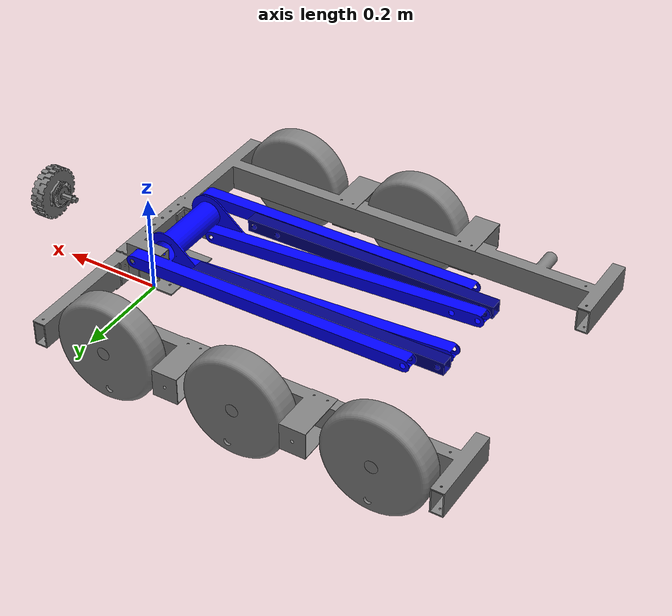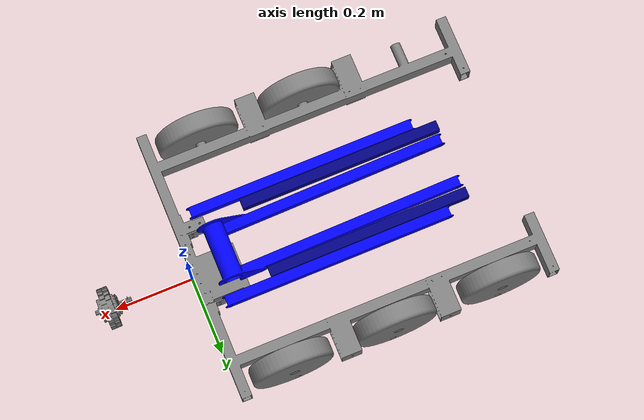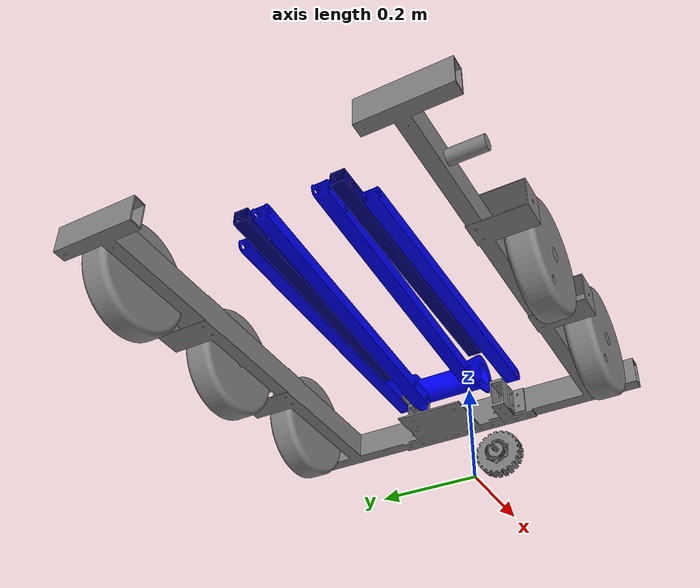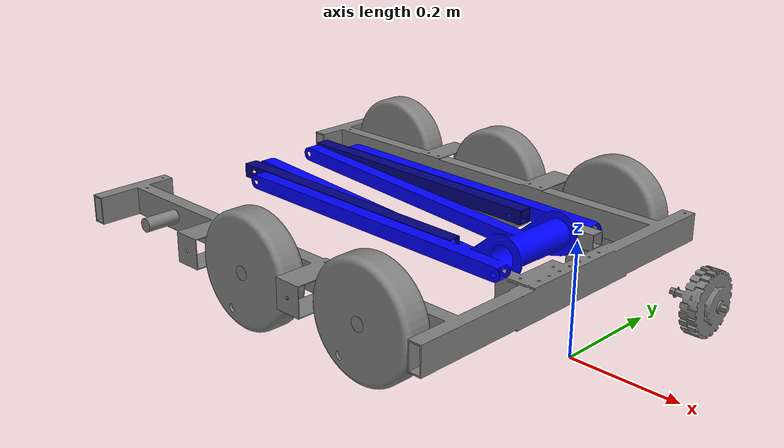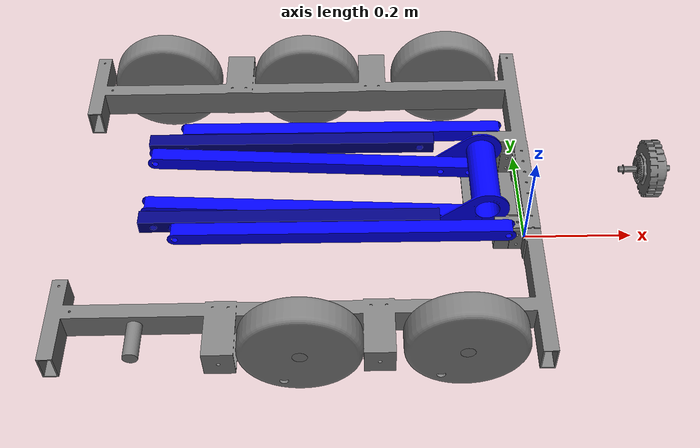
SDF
<?xml version="1.0" encoding="utf-8"?>
<sdf version="1.5">
  <model name="SimBot2019-2">
    <pose>0 0 0.12446 0 0 0</pose>
    <plugin name="clock" filename="libgz_clock.so">
      <topic>/gazebo/frc/time</topic>
    </plugin>
    <link name="Frame">
      <gravity>1</gravity>
      <self_collide>0</self_collide>
      <pose>-0.321553535676864 0.00175347404046746 -0.000511003682687343 -1.5707963267949 0 1.5707963267949</pose>
      <must_be_base_link>1</must_be_base_link>
      <velocity_decay>
        <linear>0</linear>
        <angular>0</angular>
      </velocity_decay>
      <inertial>
        <mass>3.62245562967997</mass>
        <pose>0 0 0 0 0 0</pose>
        <inertia>
          <ixx>0.2095541251639</ixx>
          <ixy>2.5056971384159E-05</ixy>
          <ixz>0.00167712046646788</ixz>
          <iyy>0.392915780451513</iyy>
          <iyz>0.000439438632626004</iyz>
          <izz>0.183814402513456</izz>
        </inertia>
      </inertial>
      <collision name="Frame_collision">
        <pose>-0.00175347404046739 -0.000511003682687411 0.0848464737230545 0 0 0</pose>
        <geometry>
          <mesh>
            <scale>1 1 1</scale>
            <uri>model://SimBot2019-2/meshes/Frame_col.STL</uri>
          </mesh>
        </geometry>
        <surface>
          <contact>
            <ode />
          </contact>
          <friction>
            <ode>
              <mu>1</mu>
              <mu2>1</mu2>
            </ode>
          </friction>
        </surface>
      </collision>
      <visual name="Frame_visual">
        <pose>-0.00175347404046739 -0.000511003682687411 0.0848464737230545 0 0 0</pose>
        <material>
          <ambient>0.501960784313725 0.501960784313725 0.501960784313725 1</ambient>
          <diffuse>0.501960784313725 0.501960784313725 0.501960784313725 1</diffuse>
        </material>
        <geometry>
          <mesh>
            <scale>1 1 1</scale>
            <uri>model://SimBot2019-2/meshes/Frame.STL</uri>
          </mesh>
        </geometry>
      </visual>
    </link>
    <link name="LFWheel">
      <gravity>1</gravity>
      <self_collide>0</self_collide>
      <pose>-0.673098436426671 0.303262709940693 0.00169521560483079 -1.5707963267949 0 1.5707963267949</pose>
      <must_be_base_link>0</must_be_base_link>
      <velocity_decay>
        <linear>0</linear>
        <angular>0</angular>
      </velocity_decay>
      <inertial>
        <mass>0.255325203825891</mass>
        <pose>0 0 0 0 0 0</pose>
        <inertia>
          <ixx>0</ixx>
          <ixy>0</ixy>
          <ixz>0</ixz>
          <iyy>0</iyy>
          <iyz>0</iyz>
          <izz>0</izz>
        </inertia>
      </inertial>
      <collision name="LFWheel_collision">
        <pose>-0.303262709940693 0.00169521560483064 -0.266698427026753 0 0 0</pose>
        <geometry>
          <mesh>
            <scale>1 1 1</scale>
            <uri>model://SimBot2019-2/meshes/LFWheel_col.STL</uri>
          </mesh>
        </geometry>
        <surface>
          <contact>
            <ode />
          </contact>
          <friction>
            <ode>
              <mu>1</mu>
              <mu2>1</mu2>
            </ode>
          </friction>
        </surface>
      </collision>
      <visual name="LFWheel_visual">
        <pose>-0.303262709940693 0.00169521560483064 -0.266698427026753 0 0 0</pose>
        <material>
          <ambient>0.501960784313725 0.501960784313725 0.501960784313725 1</ambient>
          <diffuse>0.501960784313725 0.501960784313725 0.501960784313725 1</diffuse>
        </material>
        <geometry>
          <mesh>
            <scale>1 1 1</scale>
            <uri>model://SimBot2019-2/meshes/LFWheel.STL</uri>
          </mesh>
        </geometry>
      </visual>
    </link>
    <joint name="Frame-LFWheel" type="revolute">
      <parent>Frame</parent>
      <child>LFWheel</child>
      <pose>-5.55111512312578E-17 4.42156048337892E-05 -2.76542456689732E-06 0 0 3.14159265358979</pose>
      <axis>
        <xyz>-1 -1.22460635382238E-16 0</xyz>
        <dynamics>
          <damping>1</damping>
          <friction>1</friction>
        </dynamics>
        <limit>
          <effort>50</effort>
        </limit>
      </axis>
    </joint>
    <link name="LCWheel">
      <gravity>1</gravity>
      <self_collide>0</self_collide>
      <pose>-0.405312671639957 0.303262709940693 -0.00385752270000407 -1.5707963267949 0 1.5707963267949</pose>
      <must_be_base_link>0</must_be_base_link>
      <velocity_decay>
        <linear>0</linear>
        <angular>0</angular>
      </velocity_decay>
      <inertial>
        <mass>0.255325203825891</mass>
        <pose>0 0 0 0 0 0</pose>
        <inertia>
          <ixx>0</ixx>
          <ixy>0</ixy>
          <ixz>0</ixz>
          <iyy>0</iyy>
          <iyz>0</iyz>
          <izz>0</izz>
        </inertia>
      </inertial>
      <collision name="LCWheel_collision">
        <pose>-0.303262709940693 -0.00385752270000416 0.0010873377599609 0 0 0</pose>
        <geometry>
          <mesh>
            <scale>1 1 1</scale>
            <uri>model://SimBot2019-2/meshes/LCWheel_col.STL</uri>
          </mesh>
        </geometry>
        <surface>
          <contact>
            <ode />
          </contact>
          <friction>
            <ode>
              <mu>1</mu>
              <mu2>1</mu2>
            </ode>
          </friction>
        </surface>
      </collision>
      <visual name="LCWheel_visual">
        <pose>-0.303262709940693 -0.00385752270000416 0.0010873377599609 0 0 0</pose>
        <material>
          <ambient>0.501960784313725 0.501960784313725 0.501960784313725 1</ambient>
          <diffuse>0.501960784313725 0.501960784313725 0.501960784313725 1</diffuse>
        </material>
        <geometry>
          <mesh>
            <scale>1 1 1</scale>
            <uri>model://SimBot2019-2/meshes/LCWheel.STL</uri>
          </mesh>
        </geometry>
      </visual>
    </link>
    <joint name="Frame-LCWheel" type="revolute">
      <parent>Frame</parent>
      <child>LCWheel</child>
      <pose>-5.55111512312578E-17 -0.000132954805310722 0.00113500257289437 0 0 0</pose>
      <axis>
        <xyz>1 0 0</xyz>
        <dynamics>
          <damping>1</damping>
          <friction>1</friction>
        </dynamics>
        <limit>
          <effort>50</effort>
        </limit>
      </axis>
    </joint>
    <link name="LBWheel">
      <gravity>1</gravity>
      <self_collide>0</self_collide>
      <pose>-0.139700620681278 0.303199220635696 0.00169514092477994 -1.5707963267949 0 1.5707963267949</pose>
      <must_be_base_link>0</must_be_base_link>
      <velocity_decay>
        <linear>0</linear>
        <angular>0</angular>
      </velocity_decay>
      <inertial>
        <mass>0.255325203825891</mass>
        <pose>0 0 0 0 0 0</pose>
        <inertia>
          <ixx>0</ixx>
          <ixy>0</ixy>
          <ixz>0</ixz>
          <iyy>0</iyy>
          <iyz>0</iyz>
          <izz>0</izz>
        </inertia>
      </inertial>
      <collision name="LBWheel_collision">
        <pose>-0.303199220635695 0.00169514092477991 0.26669938871864 0 0 0</pose>
        <geometry>
          <mesh>
            <scale>1 1 1</scale>
            <uri>model://SimBot2019-2/meshes/LBWheel_col.STL</uri>
          </mesh>
        </geometry>
        <surface>
          <contact>
            <ode />
          </contact>
          <friction>
            <ode>
              <mu>1</mu>
              <mu2>1</mu2>
            </ode>
          </friction>
        </surface>
      </collision>
      <visual name="LBWheel_visual">
        <pose>-0.303199220635695 0.00169514092477991 0.26669938871864 0 0 0</pose>
        <material>
          <ambient>0.501960784313725 0.501960784313725 0.501960784313725 1</ambient>
          <diffuse>0.501960784313725 0.501960784313725 0.501960784313725 1</diffuse>
        </material>
        <geometry>
          <mesh>
            <scale>1 1 1</scale>
            <uri>model://SimBot2019-2/meshes/LBWheel.STL</uri>
          </mesh>
        </geometry>
      </visual>
    </link>
    <joint name="Frame-LBWheel" type="revolute">
      <parent>Frame</parent>
      <child>LBWheel</child>
      <pose>-1.11022302462516E-16 4.41409247766737E-05 3.74376878553573E-06 0 0 0</pose>
      <axis>
        <xyz>1 0 0</xyz>
        <dynamics>
          <damping>1</damping>
          <friction>1</friction>
        </dynamics>
        <limit>
          <effort>50</effort>
        </limit>
      </axis>
    </joint>
    <link name="RFWheel">
      <gravity>1</gravity>
      <self_collide>0</self_collide>
      <pose>-0.673096893872116 -0.303262709940692 0.00169528357489551 -1.5707963267949 0 1.5707963267949</pose>
      <must_be_base_link>0</must_be_base_link>
      <velocity_decay>
        <linear>0</linear>
        <angular>0</angular>
      </velocity_decay>
      <inertial>
        <mass>0.255325203825891</mass>
        <pose>0 0 0 0 0 0</pose>
        <inertia>
          <ixx>0</ixx>
          <ixy>0</ixy>
          <ixz>0</ixz>
          <iyy>0</iyy>
          <iyz>0</iyz>
          <izz>0</izz>
        </inertia>
      </inertial>
      <collision name="RFWheel_collision">
        <pose>0.303262709940693 0.00169528357489536 -0.266696884472198 0 0 0</pose>
        <geometry>
          <mesh>
            <scale>1 1 1</scale>
            <uri>model://SimBot2019-2/meshes/RFWheel_col.STL</uri>
          </mesh>
        </geometry>
        <surface>
          <contact>
            <ode />
          </contact>
          <friction>
            <ode>
              <mu>1</mu>
              <mu2>1</mu2>
            </ode>
          </friction>
        </surface>
      </collision>
      <visual name="RFWheel_visual">
        <pose>0.303262709940693 0.00169528357489536 -0.266696884472198 0 0 0</pose>
        <material>
          <ambient>0.501960784313725 0.501960784313725 0.501960784313725 1</ambient>
          <diffuse>0.501960784313725 0.501960784313725 0.501960784313725 1</diffuse>
        </material>
        <geometry>
          <mesh>
            <scale>1 1 1</scale>
            <uri>model://SimBot2019-2/meshes/RFWheel.STL</uri>
          </mesh>
        </geometry>
      </visual>
    </link>
    <joint name="Frame-RFWheel" type="revolute">
      <parent>Frame</parent>
      <child>RFWheel</child>
      <pose>5.55111512312578E-17 4.42835748872173E-05 -1.20323087010599E-06 0 0 0</pose>
      <axis>
        <xyz>1 0 0</xyz>
        <dynamics>
          <damping>1</damping>
          <friction>1</friction>
        </dynamics>
        <limit>
          <effort>50</effort>
        </limit>
      </axis>
    </joint>
    <link name="RCWheel">
      <gravity>1</gravity>
      <self_collide>0</self_collide>
      <pose>-0.406431076654579 -0.303368868926879 -0.0036834982409925 -1.5707963267949 0 1.5707963267949</pose>
      <must_be_base_link>0</must_be_base_link>
      <velocity_decay>
        <linear>0</linear>
        <angular>0</angular>
      </velocity_decay>
      <inertial>
        <mass>0.255325203825891</mass>
        <pose>0 0 0 0 0 0</pose>
        <inertia>
          <ixx>0</ixx>
          <ixy>0</ixy>
          <ixz>0</ixz>
          <iyy>0</iyy>
          <iyz>0</iyz>
          <izz>0</izz>
        </inertia>
      </inertial>
      <collision name="RCWheel_collision">
        <pose>0.30336886892688 -0.00368349824099259 -3.10672546609658E-05 0 0 0</pose>
        <geometry>
          <mesh>
            <scale>1 1 1</scale>
            <uri>model://SimBot2019-2/meshes/RCWheel_col.STL</uri>
          </mesh>
        </geometry>
        <surface>
          <contact>
            <ode />
          </contact>
          <friction>
            <ode>
              <mu>1</mu>
              <mu2>1</mu2>
            </ode>
          </friction>
        </surface>
      </collision>
      <visual name="RCWheel_visual">
        <pose>0.30336886892688 -0.00368349824099259 -3.10672546609658E-05 0 0 0</pose>
        <material>
          <ambient>0.501960784313725 0.501960784313725 0.501960784313725 1</ambient>
          <diffuse>0.501960784313725 0.501960784313725 0.501960784313725 1</diffuse>
        </material>
        <geometry>
          <mesh>
            <scale>1 1 1</scale>
            <uri>model://SimBot2019-2/meshes/RCWheel.STL</uri>
          </mesh>
        </geometry>
      </visual>
    </link>
    <joint name="Frame-RCWheel" type="revolute">
      <parent>Frame</parent>
      <child>RCWheel</child>
      <pose>1.11022302462516E-16 0.000217839348982876 -0.00112495375183556 0 0 0</pose>
      <axis>
        <xyz>1 0 0</xyz>
        <dynamics>
          <damping>1</damping>
          <friction>1</friction>
        </dynamics>
        <limit>
          <effort>50</effort>
        </limit>
      </axis>
    </joint>
    <link name="RBWheel">
      <gravity>1</gravity>
      <self_collide>0</self_collide>
      <pose>-0.139681443305567 -0.303262709940693 0.0016889037946457 -1.5707963267949 0 1.5707963267949</pose>
      <must_be_base_link>0</must_be_base_link>
      <velocity_decay>
        <linear>0</linear>
        <angular>0</angular>
      </velocity_decay>
      <inertial>
        <mass>0.255325203825891</mass>
        <pose>0 0 0 0 0 0</pose>
        <inertia>
          <ixx>0</ixx>
          <ixy>0</ixy>
          <ixz>0</ixz>
          <iyy>0</iyy>
          <iyz>0</iyz>
          <izz>0</izz>
        </inertia>
      </inertial>
      <collision name="RBWheel_collision">
        <pose>0.303262709940693 0.00168890379464568 0.266718566094351 0 0 0</pose>
        <geometry>
          <mesh>
            <scale>1 1 1</scale>
            <uri>model://SimBot2019-2/meshes/RBWheel_col.STL</uri>
          </mesh>
        </geometry>
        <surface>
          <contact>
            <ode />
          </contact>
          <friction>
            <ode>
              <mu>0</mu>
              <mu2>0</mu2>
            </ode>
          </friction>
        </surface>
      </collision>
      <visual name="RBWheel_visual">
        <pose>0.303262709940693 0.00168890379464568 0.266718566094351 0 0 0</pose>
        <material>
          <ambient>0.501960784313725 0.501960784313725 0.501960784313725 1</ambient>
          <diffuse>0.501960784313725 0.501960784313725 0.501960784313725 1</diffuse>
        </material>
        <geometry>
          <mesh>
            <scale>1 1 1</scale>
            <uri>model://SimBot2019-2/meshes/RBWheel.STL</uri>
          </mesh>
        </geometry>
      </visual>
    </link>
    <joint name="Frame-RBWheel" type="revolute">
      <parent>Frame</parent>
      <child>RBWheel</child>
      <pose>5.55111512312578E-17 3.7903794642441E-05 2.29211444965349E-05 0 0 0</pose>
      <axis>
        <xyz>1 0 0</xyz>
        <dynamics>
          <damping>1</damping>
          <friction>1</friction>
        </dynamics>
        <limit>
          <effort>50</effort>
        </limit>
      </axis>
    </joint>
    <link name="Climber1">
      <gravity>1</gravity>
      <self_collide>0</self_collide>
      <pose>-0.323733307948634 0.00178585381407782 0.0353743678217534 -1.5707963267949 0 1.5707963267949</pose>
      <must_be_base_link>0</must_be_base_link>
      <velocity_decay>
        <linear>0</linear>
        <angular>0</angular>
      </velocity_decay>
      <inertial>
        <mass>1.09137603293812</mass>
        <pose>0 0 0 0 0 0</pose>
        <inertia>
          <ixx>0.0103078548798271</ixx>
          <ixy>1.34382460025718E-06</ixy>
          <ixz>2.10777898500688E-05</ixz>
          <iyy>0.0183089226570834</iyy>
          <iyz>0.000240141860446858</iyz>
          <izz>0.00812380263892143</izz>
        </inertia>
      </inertial>
      <collision name="Climber1_collision">
        <pose>-0.00178585381407775 0.0353743678217533 0.0826667014512842 0 0 0</pose>
        <geometry>
          <mesh>
            <scale>1 1 1</scale>
            <uri>model://SimBot2019-2/meshes/Climber1_col.STL</uri>
          </mesh>
        </geometry>
        <surface>
          <contact>
            <ode />
          </contact>
          <friction>
            <ode>
              <mu>0</mu>
              <mu2>0</mu2>
            </ode>
          </friction>
        </surface>
      </collision>
      <visual name="Climber1_visual">
        <pose>-0.00178585381407775 0.0353743678217533 0.0826667014512842 0 0 0</pose>
        <material>
          <ambient>0 0 1 1</ambient>
          <diffuse>0 0 1 1</diffuse>
        </material>
        <geometry>
          <mesh>
            <scale>1 1 1</scale>
            <uri>model://SimBot2019-2/meshes/Climber1.STL</uri>
          </mesh>
        </geometry>
      </visual>
    </link>
    <joint name="Frame-Climber1" type="revolute">
      <parent>Frame</parent>
      <child>Climber1</child>
      <pose>1.66967134562768E-16 -0.00590065564055302 -0.234832924196666 0 0 0</pose>
      <axis>
        <xyz>1 0 0</xyz>
        <dynamics>
          <damping>1</damping>
          <friction>1</friction>
        </dynamics>
        <limit>
          <upper>0</upper>
          <lower>0</lower>
          <effort>100</effort>
        </limit>
      </axis>
    </joint>
    <link name="Climber2">
      <gravity>1</gravity>
      <self_collide>0</self_collide>
      <pose>-0.42638491633238 0.00178585321055879 0.0435126444989845 -1.5707963267949 0 1.5707963267949</pose>
      <must_be_base_link>0</must_be_base_link>
      <velocity_decay>
        <linear>0</linear>
        <angular>0</angular>
      </velocity_decay>
      <inertial>
        <mass>0.409299999077662</mass>
        <pose>0 0 0 0 0 0</pose>
        <inertia>
          <ixx>1.19895149546238E-07</ixx>
          <ixy>1.30570888906081E-07</ixy>
          <ixz>1.96930921731175E-05</ixz>
          <iyy>0.00323490402888518</iyy>
          <iyz>7.94904525265603E-10</iyz>
          <izz>0.00323478414427652</izz>
        </inertia>
      </inertial>
      <collision name="Climber2_collision">
        <pose>-0.00178585321055869 0.0435126444989844 -0.0199849069324619 0 0 0</pose>
        <geometry>
          <mesh>
            <scale>1 1 1</scale>
            <uri>model://SimBot2019-2/meshes/Climber2_col.STL</uri>
          </mesh>
        </geometry>
        <surface>
          <contact>
            <ode />
          </contact>
          <friction>
            <ode>
              <mu>1</mu>
              <mu2>1</mu2>
            </ode>
          </friction>
        </surface>
      </collision>
      <visual name="Climber2_visual">
        <pose>-0.00178585321055869 0.0435126444989844 -0.0199849069324619 0 0 0</pose>
        <material>
          <ambient>0 0 0.501960784313725 1</ambient>
          <diffuse>0 0 0.501960784313725 1</diffuse>
        </material>
        <geometry>
          <mesh>
            <scale>1 1 1</scale>
            <uri>model://SimBot2019-2/meshes/Climber2.STL</uri>
          </mesh>
        </geometry>
      </visual>
    </link>
    <joint name="Climber1-Climber2" type="revolute">
      <parent>Climber1</parent>
      <child>Climber2</child>
      <pose>9.82287168271867E-17 -0.00158127981010294 0.24129407342068 0 0 3.14159265358979</pose>
      <axis>
        <xyz>-1 -1.22460635382238E-16 0</xyz>
        <dynamics>
          <damping>0</damping>
          <friction>0</friction>
        </dynamics>
        <limit>
          <upper>0</upper>
          <lower>0</lower>
          <effort>100</effort>
        </limit>
      </axis>
    </joint>
    <plugin name="Frame-LFWheel_motor" filename="libgz_dc_motor.so">
      <joint>Frame-LFWheel</joint>
      <topic>/gazebo/frc/simulator/pwm/1</topic>
      <multiplier>10</multiplier>
    </plugin>
    <plugin name="Frame-LCWheel_motor" filename="libgz_dc_motor.so">
      <joint>Frame-LCWheel</joint>
      <topic>/gazebo/frc/simulator/pwm/1</topic>
      <multiplier>10</multiplier>
    </plugin>
    <plugin name="Frame-LBWheel_motor" filename="libgz_dc_motor.so">
      <joint>Frame-LBWheel</joint>
      <topic>/gazebo/frc/simulator/pwm/3</topic>
      <multiplier>10</multiplier>
    </plugin>
    <plugin name="Frame-RFWheel_motor" filename="libgz_dc_motor.so">
      <joint>Frame-RFWheel</joint>
      <topic>/gazebo/frc/simulator/pwm/4</topic>
      <multiplier>10</multiplier>
    </plugin>
    <plugin name="Frame-RCWheel_motor" filename="libgz_dc_motor.so">
      <joint>Frame-RCWheel</joint>
      <topic>/gazebo/frc/simulator/pwm/4</topic>
      <multiplier>10</multiplier>
    </plugin>
    <plugin name="Frame-RBWheel_motor" filename="libgz_dc_motor.so">
      <joint>Frame-RBWheel</joint>
      <topic>/gazebo/frc/simulator/pwm/4</topic>
      <multiplier>10</multiplier>
    </plugin>
    <plugin name="Frame-Climber1_motor" filename="libgz_dc_motor.so">
      <joint>Frame-Climber1</joint>
      <topic>/gazebo/frc/simulator/pwm/6</topic>
      <multiplier>50</multiplier>
    </plugin>
  </model>
</sdf>
